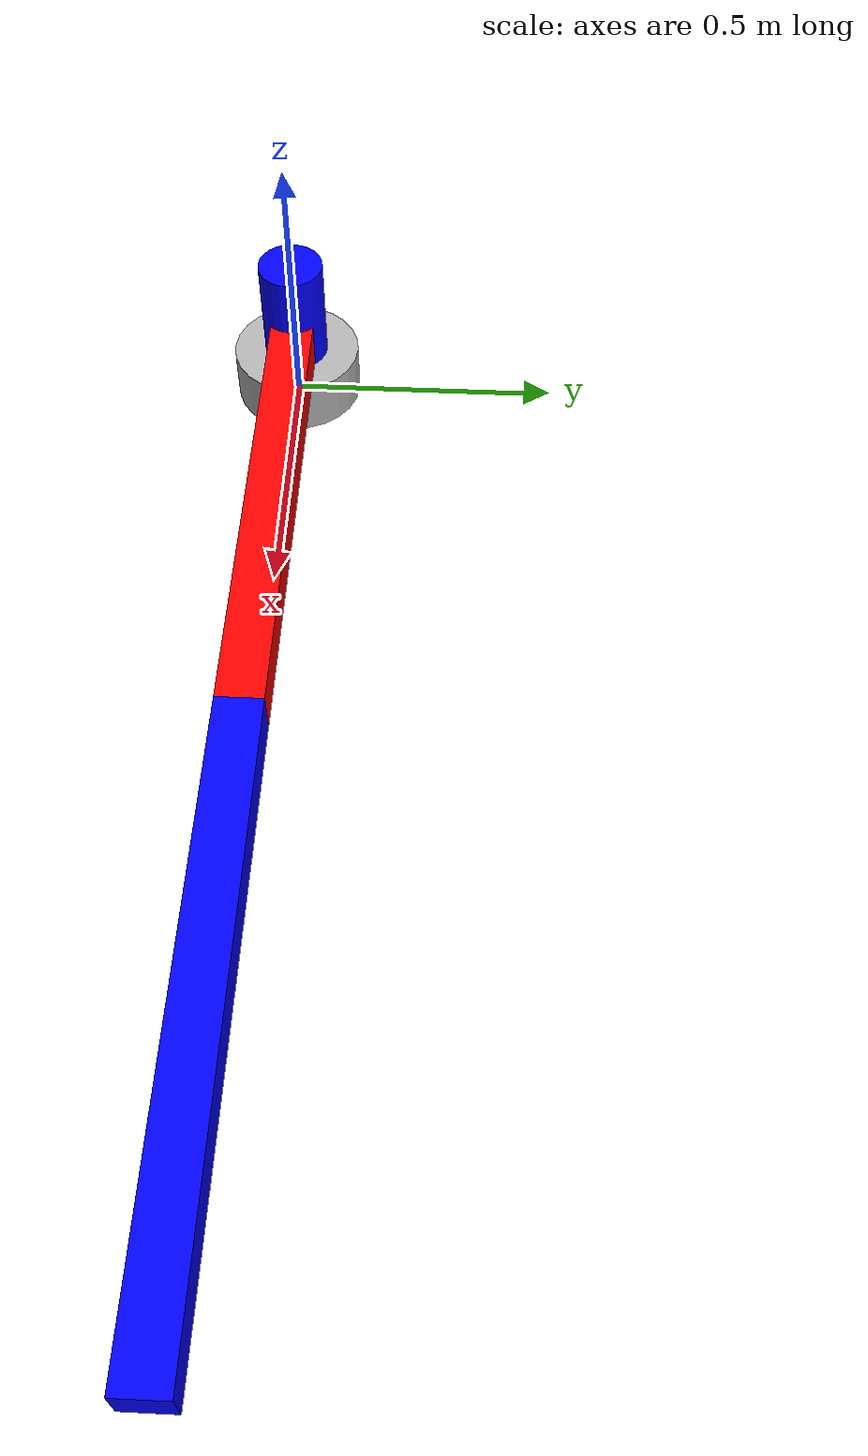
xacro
<?xml version="1.0"?>
<robot xmlns:xacro="http://www.ros.org/wiki/xacro" name="rtr_manipulator">

  <xacro:property name="l2" value="0.9"/>
  <xacro:property name="l3" value="1.0"/>
  <xacro:property name="width" value="0.08"/>

  <material name="blue"><color rgba="0 0 1 1"/></material>
  <material name="red"><color rgba="1 0 0 1"/></material>
  <material name="green"><color rgba="0 1 0 1"/></material>
  <material name="grey"><color rgba="0.7 0.7 0.7 1"/></material>

  <link name="world"/>

  <link name="base_link">
    <visual>
      <origin xyz="0 0 0.05" rpy="0 0 0"/>
      <geometry><cylinder radius="0.12" length="0.1"/></geometry>
      <material name="grey"/>
    </visual>
    <collision>
      <origin xyz="0 0 0.05" rpy="0 0 0"/>
      <geometry><cylinder radius="0.12" length="0.1"/></geometry>
    </collision>
  </link>

  <joint name="world_to_base" type="fixed">
    <parent link="world"/>
    <child link="base_link"/>
    <origin xyz="0 0 0" rpy="0 0 0"/>
  </joint>

  <link name="link_yaw">
    <visual>
      <origin xyz="0 0 0.15" rpy="0 0 0"/>
      <geometry><cylinder radius="0.06" length="0.3"/></geometry>
      <material name="blue"/>
    </visual>
    <collision>
      <origin xyz="0 0 0.15" rpy="0 0 0"/>
      <geometry><cylinder radius="0.06" length="0.3"/></geometry>
    </collision>
  </link>

  <joint name="joint_theta1" type="revolute">
    <parent link="base_link"/>
    <child link="link_yaw"/>
    <origin xyz="0 0 0" rpy="0 0 0"/>
    <axis xyz="0 0 1"/>
    <limit lower="-3.14159" upper="3.14159" effort="100" velocity="1.0"/>
  </joint>

  <link name="link_carriage">
    <visual>
      <origin xyz="0 0 0" rpy="0 0 0"/>
      <geometry><box size="${width} ${width} ${width}"/></geometry>
      <material name="green"/>
    </visual>
    <collision>
      <origin xyz="0 0 0" rpy="0 0 0"/>
      <geometry><box size="${width} ${width} ${width}"/></geometry>
    </collision>
  </link>

  <joint name="joint_theta2" type="prismatic">
    <parent link="link_yaw"/>
    <child link="link_carriage"/>
    <origin xyz="0 0 0.15" rpy="0 0 0"/> <axis xyz="0 0 1"/>
    <limit lower="0.0" upper="0.3" effort="200" velocity="0.25"/>
  </joint>

  <link name="link_upper">
    <visual>
      <origin xyz="${l2/2} 0 0" rpy="0 0 0"/>
      <geometry><box size="${l2} ${width} ${width}"/></geometry>
      <material name="red"/>
    </visual>
    <collision>
      <origin xyz="${l2/2} 0 0" rpy="0 0 0"/>
      <geometry><box size="${l2} ${width} ${width}"/></geometry>
    </collision>
  </link>

  <joint name="fixed_carriage_upper" type="fixed">
    <parent link="link_carriage"/>
    <child link="link_upper"/>
    <origin xyz="0 0 0" rpy="0 0 0"/>
  </joint>

  <link name="link_forearm">
    <visual>
      <origin xyz="${l3/2} 0 0" rpy="0 0 0"/>
      <geometry><box size="${l3} ${width} ${width}"/></geometry>
      <material name="blue"/>
    </visual>
    <collision>
      <origin xyz="${l3/2} 0 0" rpy="0 0 0"/>
      <geometry><box size="${l3} ${width} ${width}"/></geometry>
    </collision>
  </link>

  <joint name="joint_theta3" type="revolute">
    <parent link="link_upper"/>
    <child link="link_forearm"/>
    <origin xyz="${l2} 0 0" rpy="0 0 0"/>
    <axis xyz="0 1 0"/>
    <limit lower="-3.14159" upper="3.14159" effort="100" velocity="1.0"/>
  </joint>

  <link name="tool0"/>
  <joint name="wrist_to_tool0" type="fixed">
    <parent link="link_forearm"/>
    <child link="tool0"/>
    <origin xyz="${l3} 0 0" rpy="0 0 0"/>
  </joint>

  <!-- Ignored by joint_state_publisher_gui / classic chain; required for ros2_control bringup. -->
  <ros2_control name="RTRMock" type="system">
    <hardware>
      <plugin>mock_components/GenericSystem</plugin>
      <param name="fake_sensor_commands">false</param>
    </hardware>
    <joint name="joint_theta1">
      <command_interface name="position"/>
      <state_interface name="position">
        <param name="initial_value">0.0</param>
      </state_interface>
    </joint>
    <joint name="joint_theta2">
      <command_interface name="position"/>
      <state_interface name="position">
        <param name="initial_value">0.5</param>
      </state_interface>
    </joint>
    <joint name="joint_theta3">
      <command_interface name="position"/>
      <state_interface name="position">
        <param name="initial_value">0.2</param>
      </state_interface>
    </joint>
  </ros2_control>
</robot>
